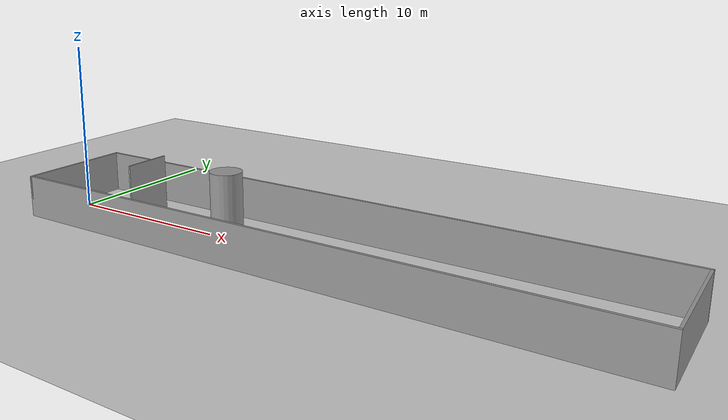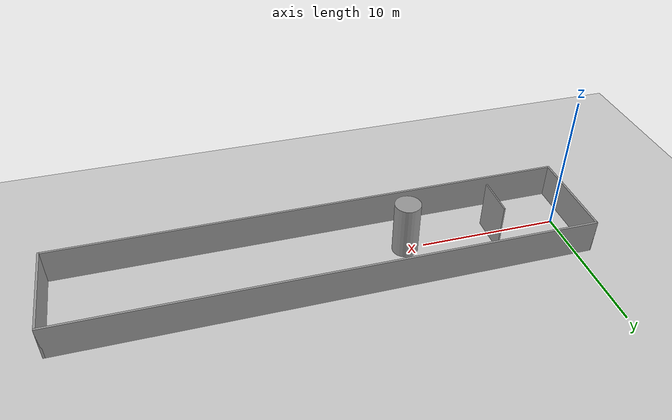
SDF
<sdf version="1.6">
 <world name="default">
  <light name="sun" type="directional">
   <pose>0 0 10 0 -0 0</pose>
   <diffuse>0.8 0.8 0.8 1</diffuse>
   <specular>0.1 0.1 0.1 1</specular>
   <attenuation>
    <range>1000</range>
    <constant>0.9</constant>
    <linear>0.01</linear>
    <quadratic>0.001</quadratic>
   </attenuation>
   <direction>-0.5 0.5 -1</direction>
  </light>
  <model name="ground_plane">
   <static>1</static>
   <link name="link">
    <collision name="collision">
     <geometry><plane><normal>0 0 1</normal><size>100 100</size></plane></geometry>
     <surface><friction><ode><mu>100</mu><mu2>50</mu2></ode></friction></surface>
    </collision>
    <visual name="visual">
     <cast_shadows>0</cast_shadows>
     <geometry><plane><normal>0 0 1</normal><size>100 100</size></plane></geometry>
     <material>
      <script><uri>file://media/materials/scripts/gazebo.material</uri><name>Gazebo/Grey</name></script>
     </material>
    </visual>
   </link>
  </model>
  <gravity>0 0 -9.8</gravity>
  <magnetic_field>6e-06 2.3e-05 -4.2e-05</magnetic_field>
  <atmosphere type="adiabatic"/>
  <physics name="default_physics" default="0" type="ode">
   <max_step_size>0.001</max_step_size>
   <real_time_factor>1</real_time_factor>
   <real_time_update_rate>1000</real_time_update_rate>
  </physics>
  <scene><ambient>0.4 0.4 0.4 1</ambient><background>0.7 0.7 0.7 1</background><shadows>1</shadows></scene>
  <spherical_coordinates>
   <surface_model>EARTH_WGS84</surface_model>
   <latitude_deg>0</latitude_deg>
   <longitude_deg>0</longitude_deg>
   <elevation>0</elevation>
   <heading_deg>0</heading_deg>
  </spherical_coordinates>
  <model name="Avoidance">
   <pose>17.3097 0.068886 0 0 -0 0</pose>
   <link name="Wall_18">
    <collision name="Wall_18_Collision">
     <geometry><box><size>7 0.15 2.5</size></box></geometry>
     <pose>0 0 1.25 0 -0 0</pose>
    </collision>
    <visual name="Wall_18_Visual">
     <pose>0 0 1.25 0 -0 0</pose>
     <geometry><box><size>7 0.15 2.5</size></box></geometry>
     <material>
      <script><uri>file://media/materials/scripts/gazebo.material</uri><name>Gazebo/Grey</name></script>
      <ambient>1 1 1 1</ambient>
     </material>
    </visual>
    <pose>-18.425 0 0 0 0 -1.5708</pose>
   </link>
   <link name="Wall_20">
    <collision name="Wall_20_Collision">
     <geometry><box><size>37 0.15 2.5</size></box></geometry>
     <pose>0 0 1.25 0 -0 0</pose>
    </collision>
    <visual name="Wall_20_Visual">
     <pose>0 0 1.25 0 -0 0</pose>
     <geometry><box><size>37 0.15 2.5</size></box></geometry>
     <material>
      <script><uri>file://media/materials/scripts/gazebo.material</uri><name>Gazebo/Grey</name></script>
      <ambient>1 1 1 1</ambient>
     </material>
    </visual>
    <pose>-1e-06 3.425 0 0 -0 0</pose>
   </link>
   <link name="Wall_22">
    <collision name="Wall_22_Collision">
     <geometry><box><size>37 0.15 2.5</size></box></geometry>
     <pose>0 0 1.25 0 -0 0</pose>
    </collision>
    <visual name="Wall_22_Visual">
     <pose>0 0 1.25 0 -0 0</pose>
     <geometry><box><size>37 0.15 2.5</size></box></geometry>
     <material>
      <script><uri>file://media/materials/scripts/gazebo.material</uri><name>Gazebo/Grey</name></script>
      <ambient>1 1 1 1</ambient>
     </material>
    </visual>
    <pose>-1e-06 -3.425 0 0 -0 0</pose>
   </link>
   <link name="Wall_23">
    <collision name="Wall_23_Collision">
     <geometry><box><size>7 0.15 2.5</size></box></geometry>
     <pose>0 0 1.25 0 -0 0</pose>
    </collision>
    <visual name="Wall_23_Visual">
     <pose>0 0 1.25 0 -0 0</pose>
     <geometry><box><size>7 0.15 2.5</size></box></geometry>
     <material>
      <script><uri>file://media/materials/scripts/gazebo.material</uri><name>Gazebo/Grey</name></script>
      <ambient>1 1 1 1</ambient>
     </material>
    </visual>
    <pose>18.425 0 0 0 -0 1.5708</pose>
   </link>
   <static>1</static>
  </model>
  <model name="unit_box_0">
   <pose>5.05385 0.214587 1.78767 1e-06 -0 0.001045</pose>
   <link name="link">
    <inertial>
     <mass>1</mass>
     <inertia>
      <ixx>0.166667</ixx>
      <ixy>0</ixy>
      <ixz>0</ixz>
      <iyy>0.166667</iyy>
      <iyz>0</iyz>
      <izz>0.166667</izz>
     </inertia>
    </inertial>
    <collision name="collision"><geometry><box><size>0.099254 2.90974 3.57534</size></box></geometry></collision>
    <visual name="visual">
     <geometry><box><size>0.099254 2.90974 3.57534</size></box></geometry>
     <material>
      <script><name>Gazebo/Grey</name><uri>file://media/materials/scripts/gazebo.material</uri></script>
     </material>
    </visual>
   </link>
  </model>
  <model name="unit_cylinder_0_clone_clone">
   <pose>11.3905 -0.079314 1.99092 0 -0 6.1e-05</pose>
   <link name="link">
    <inertial>
     <mass>1</mass>
     <inertia><ixx>0.145833</ixx><ixy>0</ixy><ixz>0</ixz><iyy>0.145833</iyy><iyz>0</iyz><izz>0.125</izz></inertia>
    </inertial>
    <collision name="collision">
     <geometry><cylinder><radius>0.919756</radius><length>3.98184</length></cylinder></geometry>
    </collision>
    <visual name="visual">
     <geometry><cylinder><radius>0.919756</radius><length>3.98184</length></cylinder></geometry>
     <material>
      <script><name>Gazebo/Grey</name><uri>file://media/materials/scripts/gazebo.material</uri></script>
     </material>
    </visual>
   </link>
  </model>
 </world>
</sdf>
